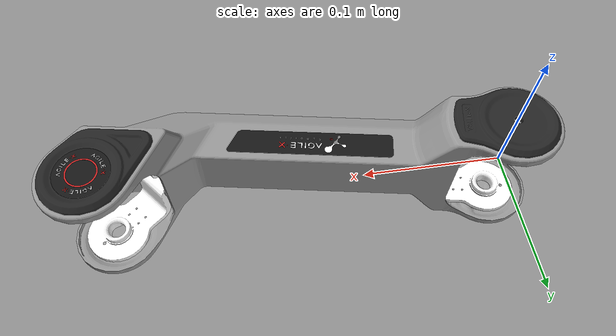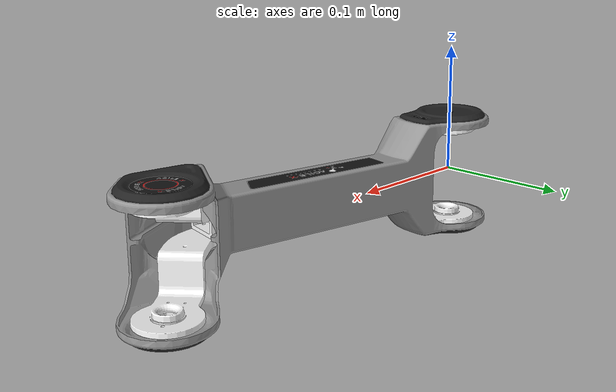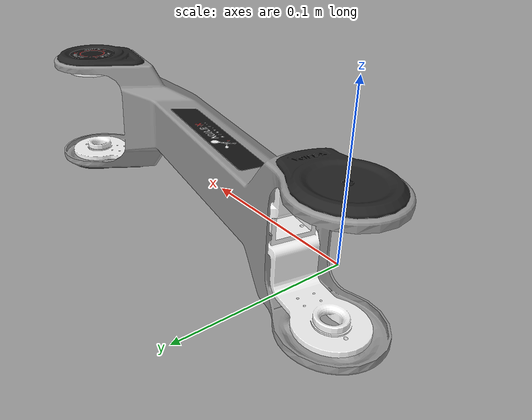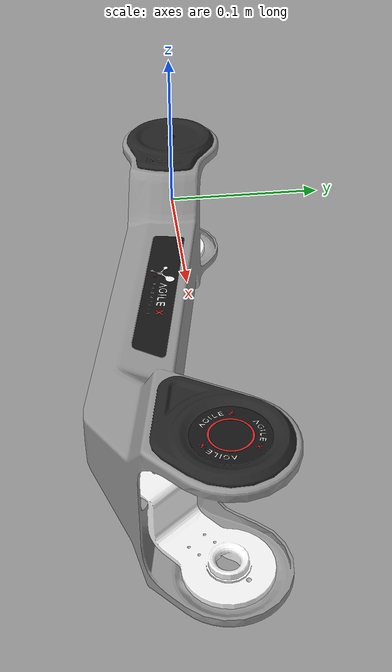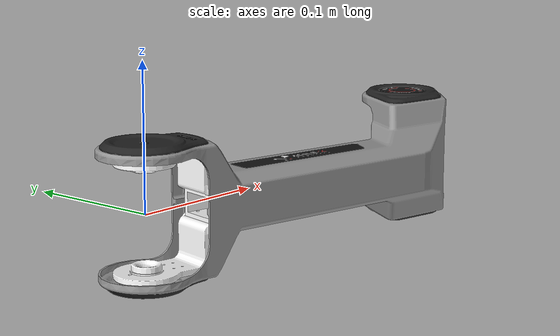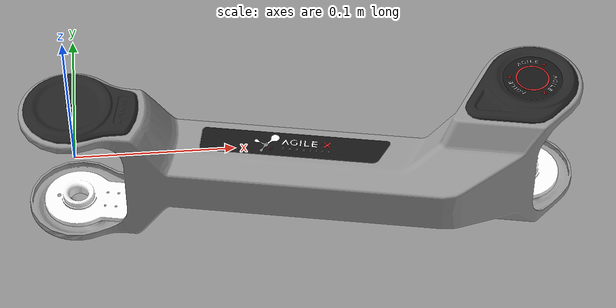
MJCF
<mujoco model="link2">
  <default>
    <default class="visual">
      <geom group="2" type="mesh" contype="0" conaffinity="0"/>
    </default>
    <default class="collision">
      <geom group="3" type="mesh"/>
    </default>
  </default>
  <asset>
    <material name="Material-塑胶.027" specular="0.0" shininess="0.25" rgba="0.141176 0.141176 0.141176 1.000000"/>
    <material name="Material-塑胶.036" specular="0.0" shininess="0.25" rgba="0.141176 0.141176 0.141176 1.000000"/>
    <material name="Material-塑胶.037" specular="0.0" shininess="0.25" rgba="0.141176 0.141176 0.141176 1.000000"/>
    <material name="Material-塑胶.038" specular="0.0" shininess="0.25" rgba="0.141176 0.141176 0.141176 1.000000"/>
    <material name="Material-塑胶__1_.017" specular="0.0" shininess="0.25" rgba="0.588235 0.588235 0.588235 1.000000"/>
    <material name="Material-塑胶__2_.014" specular="0.0" shininess="0.25" rgba="0.086275 0.086275 0.086275 1.000000"/>
    <material name="Material-塑胶__2_.015" specular="0.0" shininess="0.25" rgba="0.086275 0.086275 0.086275 1.000000"/>
    <material name="Material-塑胶__2_.016" specular="0.0" shininess="0.25" rgba="0.086275 0.086275 0.086275 1.000000"/>
    <material name="Material-塑胶__2_.017" specular="0.0" shininess="0.25" rgba="0.086275 0.086275 0.086275 1.000000"/>
    <material name="Material-塑胶__3_.043" specular="0.0" shininess="0.25" rgba="0.815686 0.149020 0.149020 1.000000"/>
    <material name="Material-塑胶__3_.044" specular="0.0" shininess="0.25" rgba="0.815686 0.149020 0.149020 1.000000"/>
    <material name="Material-塑胶__3_.045" specular="0.0" shininess="0.25" rgba="0.815686 0.149020 0.149020 1.000000"/>
    <material name="Material-塑胶__3_.046" specular="0.0" shininess="0.25" rgba="0.815686 0.149020 0.149020 1.000000"/>
    <material name="Material-塑胶__3_.047" specular="0.0" shininess="0.25" rgba="0.815686 0.149020 0.149020 1.000000"/>
    <material name="Material-塑胶__3_.048" specular="0.0" shininess="0.25" rgba="0.815686 0.149020 0.149020 1.000000"/>
    <material name="Material-塑胶__3_.049" specular="0.0" shininess="0.25" rgba="0.815686 0.149020 0.149020 1.000000"/>
    <material name="Material-塑胶__3_.050" specular="0.0" shininess="0.25" rgba="0.815686 0.149020 0.149020 1.000000"/>
    <material name="Material-塑胶__3_.051" specular="0.0" shininess="0.25" rgba="0.815686 0.149020 0.149020 1.000000"/>
    <material name="Material-塑胶__3_.052" specular="0.0" shininess="0.25" rgba="0.815686 0.149020 0.149020 1.000000"/>
    <material name="Material-塑胶__3_.053" specular="0.0" shininess="0.25" rgba="0.815686 0.149020 0.149020 1.000000"/>
    <material name="Material-塑胶__3_.054" specular="0.0" shininess="0.25" rgba="0.815686 0.149020 0.149020 1.000000"/>
    <material name="Material-塑胶__3_.055" specular="0.0" shininess="0.25" rgba="0.815686 0.149020 0.149020 1.000000"/>
    <material name="Material-塑胶__3_.056" specular="0.0" shininess="0.25" rgba="0.815686 0.149020 0.149020 1.000000"/>
    <material name="Material-塑胶__3_.057" specular="0.0" shininess="0.25" rgba="0.815686 0.149020 0.149020 1.000000"/>
    <material name="Material-塑胶__3_.058" specular="0.0" shininess="0.25" rgba="0.815686 0.149020 0.149020 1.000000"/>
    <material name="Material-塑胶__3_.059" specular="0.0" shininess="0.25" rgba="0.815686 0.149020 0.149020 1.000000"/>
    <material name="Material-塑胶__3_.060" specular="0.0" shininess="0.25" rgba="0.815686 0.149020 0.149020 1.000000"/>
    <material name="Material-塑胶__3_.061" specular="0.0" shininess="0.25" rgba="0.815686 0.149020 0.149020 1.000000"/>
    <material name="Material-塑胶__3_.062" specular="0.0" shininess="0.25" rgba="0.815686 0.149020 0.149020 1.000000"/>
    <material name="Material-塑胶__4_.004" specular="0.0" shininess="0.25" rgba="0.501961 0.501961 0.501961 1.000000"/>
    <material name="Material-塑胶__4_.005" specular="0.0" shininess="0.25" rgba="0.501961 0.501961 0.501961 1.000000"/>
    <material name="a0000000-0000-0000-0000-000000000000.007" specular="0.0" shininess="0.25" rgba="0.980392 0.980392 0.980392 1.000000"/>
    <mesh file="link2_0.obj"/>
    <mesh file="link2_1.obj"/>
    <mesh file="link2_2.obj"/>
    <mesh file="link2_3.obj"/>
    <mesh file="link2_4.obj"/>
    <mesh file="link2_5.obj"/>
    <mesh file="link2_6.obj"/>
    <mesh file="link2_7.obj"/>
    <mesh file="link2_8.obj"/>
    <mesh file="link2_9.obj"/>
    <mesh file="link2_10.obj"/>
    <mesh file="link2_11.obj"/>
    <mesh file="link2_12.obj"/>
    <mesh file="link2_13.obj"/>
    <mesh file="link2_14.obj"/>
    <mesh file="link2_15.obj"/>
    <mesh file="link2_16.obj"/>
    <mesh file="link2_17.obj"/>
    <mesh file="link2_18.obj"/>
    <mesh file="link2_19.obj"/>
    <mesh file="link2_20.obj"/>
    <mesh file="link2_21.obj"/>
    <mesh file="link2_22.obj"/>
    <mesh file="link2_23.obj"/>
    <mesh file="link2_24.obj"/>
    <mesh file="link2_25.obj"/>
    <mesh file="link2_26.obj"/>
    <mesh file="link2_27.obj"/>
    <mesh file="link2_28.obj"/>
    <mesh file="link2_29.obj"/>
    <mesh file="link2_30.obj"/>
    <mesh file="link2_31.obj"/>
    <mesh file="link2_collision_0.obj"/>
    <mesh file="link2_collision_1.obj"/>
    <mesh file="link2_collision_2.obj"/>
  </asset>
  <worldbody>
    <body name="link2">
      <geom mesh="link2_0" material="Material-塑胶__2_.017" class="visual"/>
      <geom mesh="link2_1" material="Material-塑胶__3_.062" class="visual"/>
      <geom mesh="link2_2" material="Material-塑胶__2_.016" class="visual"/>
      <geom mesh="link2_3" material="Material-塑胶__2_.015" class="visual"/>
      <geom mesh="link2_4" material="Material-塑胶__3_.061" class="visual"/>
      <geom mesh="link2_5" material="Material-塑胶__2_.014" class="visual"/>
      <geom mesh="link2_6" material="Material-塑胶__4_.005" class="visual"/>
      <geom mesh="link2_7" material="Material-塑胶__3_.060" class="visual"/>
      <geom mesh="link2_8" material="Material-塑胶__3_.059" class="visual"/>
      <geom mesh="link2_9" material="Material-塑胶__4_.004" class="visual"/>
      <geom mesh="link2_10" material="Material-塑胶__3_.058" class="visual"/>
      <geom mesh="link2_11" material="Material-塑胶__3_.057" class="visual"/>
      <geom mesh="link2_12" material="Material-塑胶__3_.056" class="visual"/>
      <geom mesh="link2_13" material="Material-塑胶__3_.055" class="visual"/>
      <geom mesh="link2_14" material="Material-塑胶__3_.054" class="visual"/>
      <geom mesh="link2_15" material="Material-塑胶__3_.053" class="visual"/>
      <geom mesh="link2_16" material="Material-塑胶__3_.052" class="visual"/>
      <geom mesh="link2_17" material="Material-塑胶__3_.051" class="visual"/>
      <geom mesh="link2_18" material="Material-塑胶__3_.050" class="visual"/>
      <geom mesh="link2_19" material="Material-塑胶__3_.049" class="visual"/>
      <geom mesh="link2_20" material="Material-塑胶__3_.048" class="visual"/>
      <geom mesh="link2_21" material="Material-塑胶__3_.047" class="visual"/>
      <geom mesh="link2_22" material="Material-塑胶__3_.046" class="visual"/>
      <geom mesh="link2_23" material="Material-塑胶__3_.045" class="visual"/>
      <geom mesh="link2_24" material="Material-塑胶__3_.044" class="visual"/>
      <geom mesh="link2_25" material="Material-塑胶__3_.043" class="visual"/>
      <geom mesh="link2_26" material="a0000000-0000-0000-0000-000000000000.007" class="visual"/>
      <geom mesh="link2_27" material="Material-塑胶.038" class="visual"/>
      <geom mesh="link2_28" material="Material-塑胶.037" class="visual"/>
      <geom mesh="link2_29" material="Material-塑胶.036" class="visual"/>
      <geom mesh="link2_30" material="Material-塑胶.027" class="visual"/>
      <geom mesh="link2_31" material="Material-塑胶__1_.017" class="visual"/>
      <geom mesh="link2_collision_0" rgba="0.12607101443195778 0.28057097791151897 0.8343476089785059 1" class="collision"/>
      <geom mesh="link2_collision_1" rgba="0.19237573258268836 0.6153558354299166 0.9453969151742884 1" class="collision"/>
      <geom mesh="link2_collision_2" rgba="0.023475270766553313 0.549741124269291 0.10104271434589762 1" class="collision"/>
    </body>
  </worldbody>
</mujoco>
